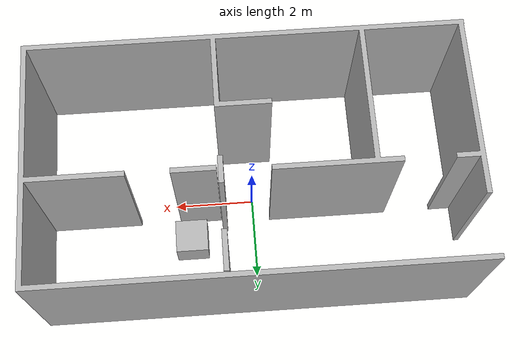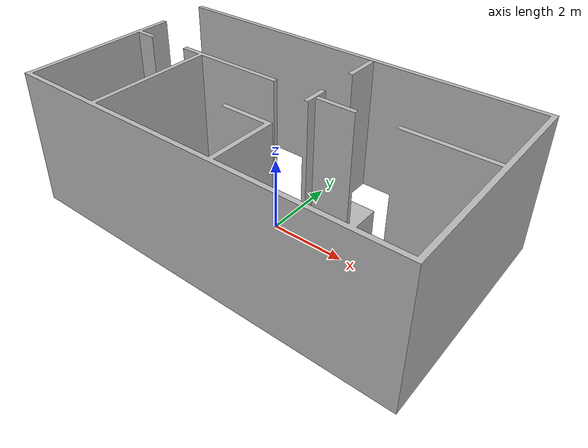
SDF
<?xml version="1.0" ?>
<sdf version="1.6">
  <model name="dicelab_bim">
    <static>true</static>

    <link name="bim_link">
      <!-- Visual Element -->
      <visual name="bim_visual">
        <geometry>
          <mesh>
            <uri>model://dicelab_bim/meshes/dicelab_BIM.stl</uri>
            <scale>1 1 1</scale>
          </mesh>
        </geometry>
        <material>
          <lighting>true</lighting>
        </material>
      </visual>

      <!-- Collision Element -->
      <collision name="bim_collision">
        <geometry>
          <mesh>
            <uri>model://dicelab_bim/meshes/dicelab_BIM.stl</uri>
            <scale>1 1 1</scale>
          </mesh>
        </geometry>
        <surface>
          <contact>
            <collide_without_contact>true</collide_without_contact>
          </contact>
          <bounce/>
          <friction>
            <ode>
              <mu>1.0</mu>
              <mu2>1.0</mu2>
            </ode>
          </friction>
        </surface>
      </collision>
    </link>
  </model>
</sdf>
